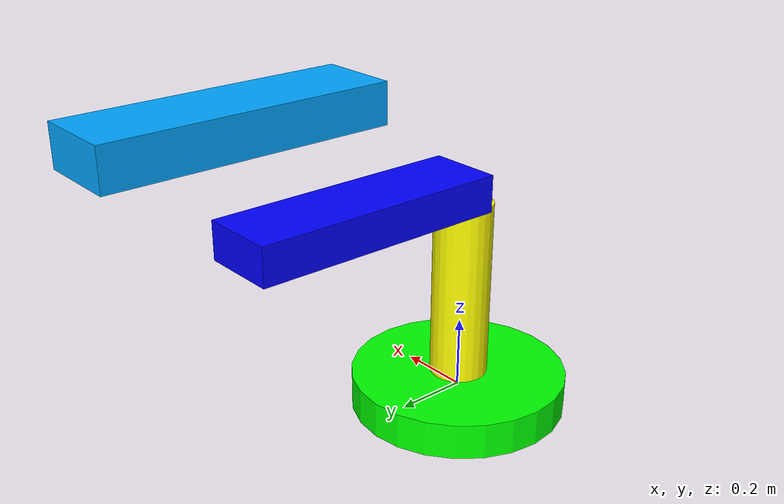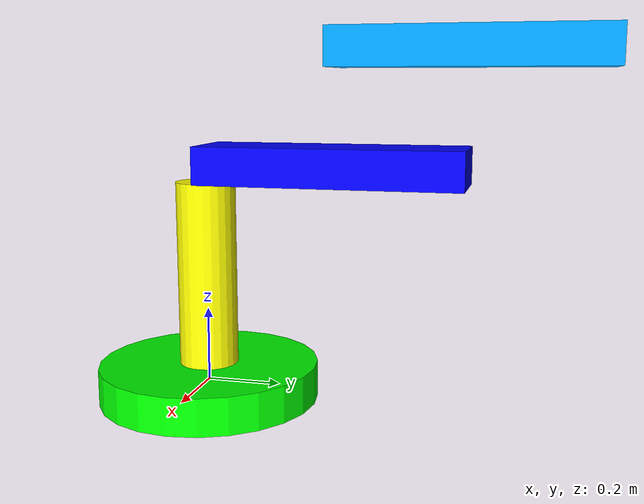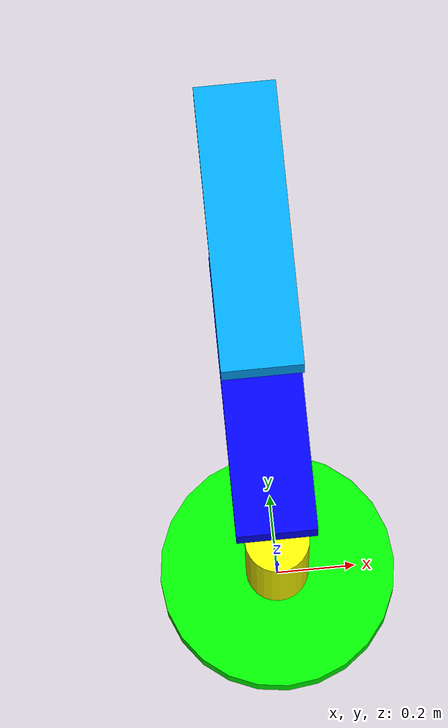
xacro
<?xml version="1.0"?>
<robot xmlns:xacro="http://www.ros.org/wiki/xacro" name="cmg_device">

<!-- obtain the Control Moment Gyro device definitions -->
<!-- 1. Load the YAML file as a dictionary property -->
  <xacro:property name="yaml_file_ptr" value="$(find cmgdevice_description)/config/cmgparams.yaml" />
  <xacro:property name="yaml_file_name" value="${xacro.load_yaml(yaml_file_ptr)}" />
  <xacro:property name="yaml_file" value="${yaml_file_name['yaml_param_file']}" />
  <xacro:property name="cmg_params" value="${xacro.load_yaml(yaml_file)}" />

  <!-- 2. Extract specific variables for use in elements -->
  <xacro:property name="disk_rad"   value="${cmg_params['links']['disk_rad']}" />
  <xacro:property name="disk_thick" value="${cmg_params['links']['disk_thick']}" />
  <xacro:property name="annulus_radout" value="${cmg_params['links']['annulus_radout']}" />
  <xacro:property name="annulus_radin" value="${cmg_params['links']['annulus_radin']}" />
  <xacro:property name="annulus_thick" value="${cmg_params['links']['annulus_thick']}" />
  <xacro:property name="disk1_mass" value="${cmg_params['links']['disk1_mass']}" />
  <xacro:property name="annulus_mass" value="${cmg_params['links']['annulus_mass']}" />
  <xacro:property name="Ixx_disk" value="${cmg_params['links']['Ixx_disk']}" />
  <xacro:property name="Iyy_disk" value="${cmg_params['links']['Iyy_disk']}" />
  <xacro:property name="Izz_disk" value="${cmg_params['links']['Izz_disk']}" />
  <xacro:property name="Ixx_ann" value="${cmg_params['links']['Ixx_ann']}" />
  <xacro:property name="Iyy_ann" value="${cmg_params['links']['Iyy_ann']}" />
  <xacro:property name="Izz_ann" value="${cmg_params['links']['Izz_ann']}" />

  <xacro:property name="flywheel_servo_mass" value="${cmg_params['actuators']['flywheel_servo_mass']}" />
  <xacro:property name="torque_servo_mass" value="${cmg_params['actuators']['torque_servo_mass']}" />
  <xacro:property name="flywheel_max_speed" value="${cmg_params['actuators']['flywheel_max_speed']}" />
  <xacro:property name="flywheel_Kv" value="${cmg_params['actuators']['flywheel_Kv']}" />
  <xacro:property name="torque_servo_Tnominal" value="${cmg_params['actuators']['torque_servo_Tnominal']}" />
  <xacro:property name="torque_servo_Tstall" value="${cmg_params['actuators']['torque_servo_Tstall']}" />

  <!-- needed Gazebo defs -->

  <!-- defs for device 'frame' -->
  <!-- assume 80-20 1010 or 1010S specs of 0.51 lbs/ft.=> 0.2313 kg/ft. => 0.759 kg/m  -->
  <xacro:property name="bar_lin_density" value="0.758858268" />
  <xacro:property name="bar_xsec"        value="0.025" />
  <xacro:property name="disk_clearance"  value="0.002" />
  <xacro:property name="bar_xsec_sq"     value="${bar_xsec * bar_xsec}" />

  <xacro:property name="bar1_length"     value="${2.0*(disk_rad + bar_xsec + disk_clearance) }" />
  <xacro:property name="bar1_mass"       value="${bar_lin_density*bar1_length}" />

  <xacro:property name="bar2_length"     value="${2.0*(disk_rad + disk_clearance) }" />
  <xacro:property name="bar2_mass"       value="${bar_lin_density*bar2_length}" />

  <xacro:property name="Ip_comaxis_bar1"  value="${bar1_mass*(bar1_length**2 + bar_xsec**2)/12.0 }" />
  <xacro:property name="Ip_xsection_bar1" value="${bar1_mass*(bar_xsec**2)/6.0}" />
  <xacro:property name="Ip_comaxis_bar2"  value="${bar2_mass*(bar2_length**2 + bar_xsec**2)/12.0 }" />
  <xacro:property name="Ip_xsection_bar2" value="${bar2_mass*(bar_xsec**2)/6.0}" />

  <xacro:property name="fw_servo_R"   value="0.025" />
  <xacro:property name="fw_servo_L"   value="0.05" />
  <xacro:property name="torq_servo_R"  value="0.035" />
  <xacro:property name="torq_servo_L"  value="0.066" />
  <xacro:property name="Izz_fw_servo" value="${ flywheel_servo_mass*fw_servo_R**2/2.0}" />
  <xacro:property name="Ixx_fw_servo" value="${ flywheel_servo_mass*( fw_servo_R**2/4.0 + fw_servo_L**2/12.0 ) }" />
  <xacro:property name="Iyy_fw_servo" value="${Ixx_fw_servo}" />
  <xacro:property name="Izz_torq_servo" value="${torque_servo_mass*torq_servo_R**2/2.0}" />
  <xacro:property name="Ixx_torq_servo" value="${torque_servo_mass*(torq_servo_R**2/4.0 + torq_servo_L**2/12.0 )}" />
  <xacro:property name="Iyy_torq_servo" value="${Ixx_torq_servo}" />

  <xacro:property name="torq_servo_name" value="torque_servo" />
  <xacro:property name="torq_servo_x" value="0.0" />
  <xacro:property name="torq_servo_y" value="0.0" />
  <xacro:property name="torq_servo_z" value="${bar2_length + torq_servo_L/2.0 - bar_xsec}" />

  <xacro:property name="fw_servo_name" value="flywheel_servo" />
  <xacro:property name="fw_servo_rx" value="${pi/2.0}" />
  <xacro:property name="fw_servo_ry" value="0.0" />
  <xacro:property name="fw_servo_rz" value="0.0" />
  <xacro:property name="fw_servo_x" value="0.0" />
  <xacro:property name="fw_servo_y" value="${2.0*disk_thick + 0.5*fw_servo_L}" />
  <!-- xacro:property name="fw_servo_y" value="1.0" / -->
  <!-- xacro:property name="fw_servo_z" value="${0.5*(bar2_length + bar_xsec)}" / -->
  <xacro:property name="fw_servo_z" value="0.0" />

  <xacro:property name="fw_disk_rx" value="${fw_servo_rx}" />
  <xacro:property name="fw_disk_ry" value="${fw_servo_rx}" />
  <xacro:property name="fw_disk_rz" value="${fw_servo_rz}" />
  <xacro:property name="fw_disk_x" value="0.0" />
  <xacro:property name="fw_disk_y" value="${-0.5*disk_thick}" />
  <!-- xacro:property name="fw_disk_z" value="${0.5*(bar2_length + bar_xsec)}" / -->
  <xacro:property name="fw_disk_z" value="0.0" />

  <xacro:property name="annulus_rx" value="${fw_disk_rx}" />
  <xacro:property name="annulus_ry" value="${fw_disk_ry}" />
  <xacro:property name="annulus_rz" value="${fw_disk_rz}" />
  <xacro:property name="annulus_x" value="${fw_disk_x}" />
  <xacro:property name="annulus_y" value="${fw_disk_y + -0.5*annulus_thick}" />
  <xacro:property name="annulus_z" value="${fw_disk_z}" />

 <link name="base_link">
    <visual>
        <geometry>
            <cylinder length="0.1" radius="0.3"/>
        </geometry>

    <!-- origin - the reference frame of the visual element wrt the reference frame of the link -->
    <!-- rpy == roll,pitch,yaw -->
    <!-- xyz == x,y,z OFFSETs -->
        <origin rpy="0 0 0" xyz="0 0 0"/>
        <material name="blue">
            <color rgba="0 1 0 1"/>
        </material>
    </visual>
</link>

<joint name="joint_1" type="revolute">
    <parent link="base_link" />
    <child link="first_link" />
    <origin xyz="0 0 0.05"/>
    <axis xyz="0 0 1" />
    <limit effort="300" velocity="2.0" lower="-1.2" upper="1.2"/>
</joint>

<link name="first_link">
    <visual>
        <geometry>
            <cylinder length="0.5" radius="0.08"/>
        </geometry>
        <origin rpy="0 0 0" xyz="0 0 0.25"/>
        <material name="yellow">
            <color rgba="1 1 0 1"/>
        </material>
    </visual>
</link>

<joint name="joint_2" type="revolute">
    <parent link="first_link"/>
    <child link="second_link"/>
    <origin xyz="0 0.0 0.5" />
    <axis xyz="1 0 0"/>
    <limit effort="300" velocity="2.0" lower="-2.0" upper="2.0" />
</joint>

<link name="second_link">
    <visual>
        <geometry>
            <!-- in the example x=0.2 is the depth of the box, and z=0.1 is the height of the box -->
            <box size="0.2 0.7 0.1" />
        </geometry>
        <!-- the origin is half way up the height, and relative to second link origin -->
        <origin rpy="0 0 0" xyz="0 0.35 0.05" />
        <material name="red">
            <color rgba="0 0 1 1" />
        </material>
    </visual>
</link>

<joint name="joint_3" type="revolute">
    <parent link="second_link"/>
    <child link="third_link"/>
    <origin xyz="0 0.7 0.0" />
    <axis xyz="1 0 0"/>
    <limit effort="300" velocity="2.0" lower="-2.0" upper="2.0" />
</joint>

<link name="third_link">
    <visual>
        <geometry>
            <!-- in the example x=0.2 is the depth of the box, and z=0.1 is the height of the box -->
            <box size="0.2 0.7 0.1" />
        </geometry>
        <!-- the origin is half way up the height, and relative to second link origin -->
        <origin rpy="0 0 0" xyz="0 0 0.35 0.05" />
        <material name="orange">
            <color rgba="0 0.647 1 1" />
        </material>
    </visual>
</link>

</robot>
